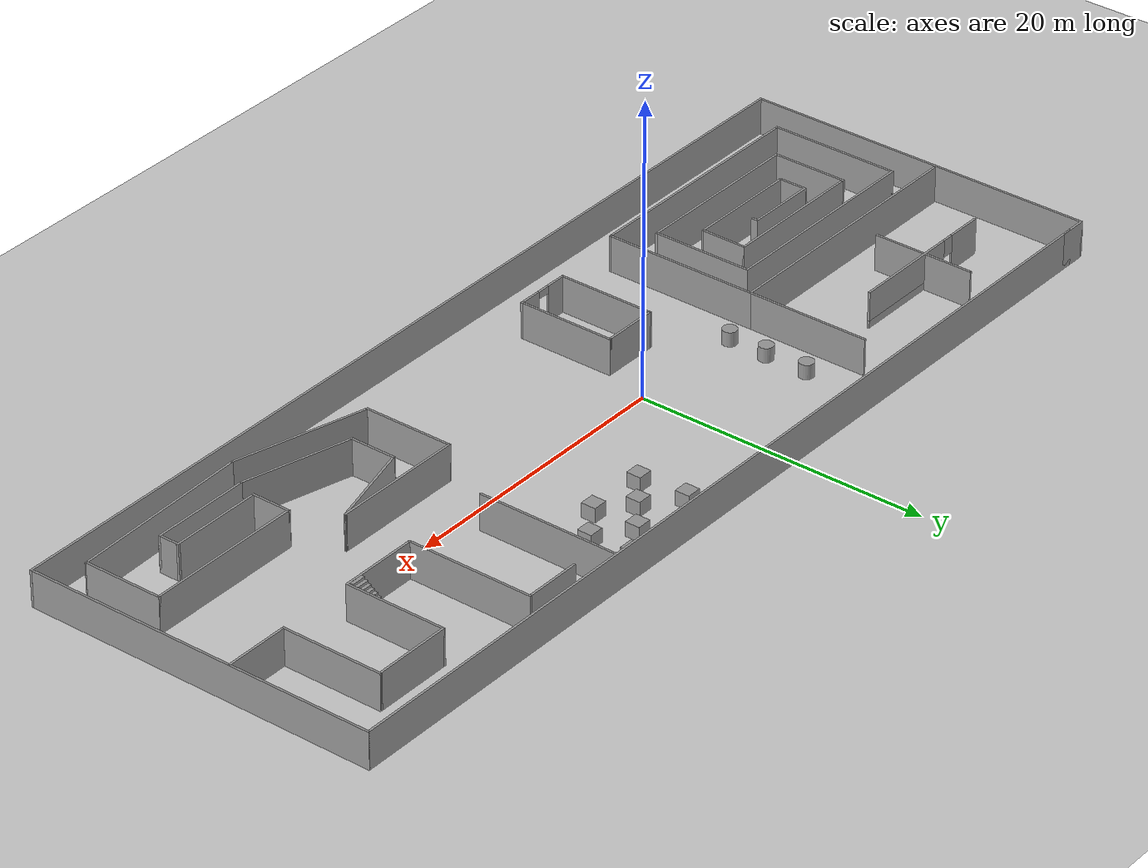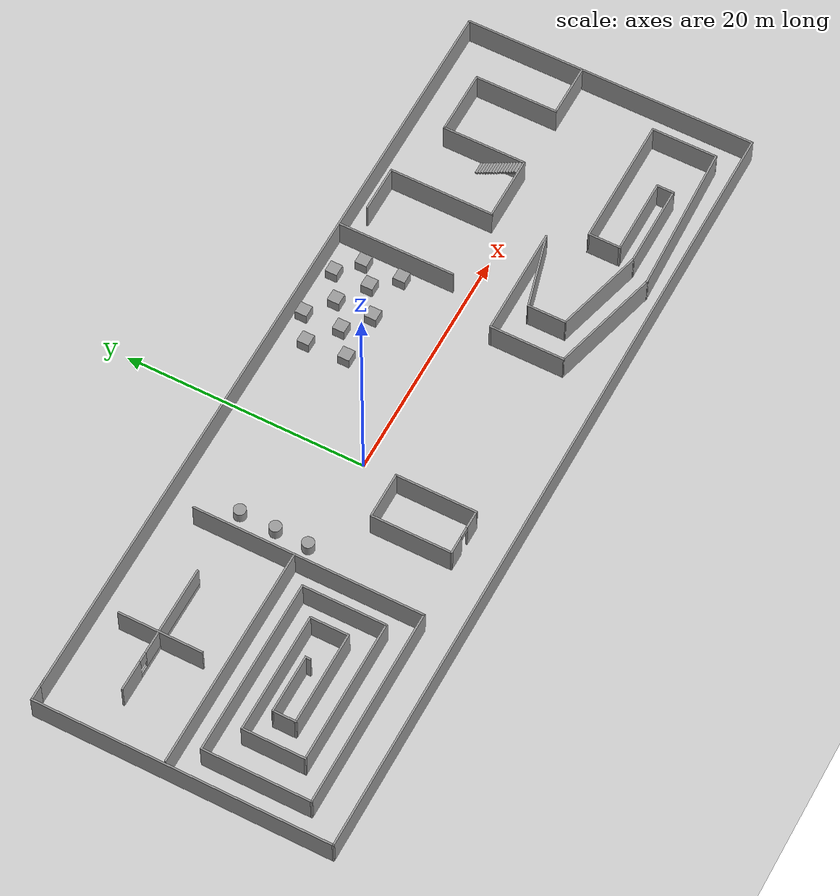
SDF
<sdf version="1.7">
 <world name="default">
  <light name="sun" type="directional">
   <pose>0 0 10 0 -0 0</pose>
   <diffuse>0.8 0.8 0.8 1</diffuse>
   <specular>0.2 0.2 0.2 1</specular>
   <attenuation>
    <range>1000</range>
    <constant>0.9</constant>
    <linear>0.01</linear>
    <quadratic>0.001</quadratic>
   </attenuation>
   <direction>-0.5 0.1 -0.9</direction>
   <spot><inner_angle>0</inner_angle><outer_angle>0</outer_angle><falloff>0</falloff></spot>
  </light>
  <model name="ground_plane">
   <static>1</static>
   <link name="link">
    <collision name="collision">
     <geometry><plane><normal>0 0 1</normal><size>100 100</size></plane></geometry>
     <surface>
      <contact><collide_bitmask>65535</collide_bitmask></contact>
      <friction><ode><mu>100</mu><mu2>50</mu2></ode></friction>
     </surface>
    </collision>
    <visual name="visual">
     <cast_shadows>0</cast_shadows>
     <geometry><plane><normal>0 0 1</normal><size>100 100</size></plane></geometry>
     <material>
      <script><uri>file://media/materials/scripts/gazebo.material</uri><name>Gazebo/Grey</name></script>
     </material>
    </visual>
   </link>
  </model>
  <gravity>0 0 -9.8</gravity>
  <magnetic_field>6e-06 2.3e-05 -4.2e-05</magnetic_field>
  <atmosphere type="adiabatic"/>
  <physics type="ode">
   <max_step_size>0.001</max_step_size>
   <real_time_factor>1</real_time_factor>
   <real_time_update_rate>1000</real_time_update_rate>
  </physics>
  <scene><ambient>0.4 0.4 0.4 1</ambient><background>0.7 0.7 0.7 1</background><shadows>1</shadows></scene>
  <spherical_coordinates>
   <surface_model>EARTH_WGS84</surface_model>
   <latitude_deg>0</latitude_deg>
   <longitude_deg>0</longitude_deg>
   <elevation>0</elevation>
   <heading_deg>0</heading_deg>
  </spherical_coordinates>
  <model name="Untitled">
   <pose>4.35845 -1.14468 0 0 -0 0</pose>
   <link name="Stairs_0">
    <visual name="Stairs_0_Visual_0">
     <pose>23.1197 5.82955 0.083333 0 -0 0</pose>
     <geometry><box><size>1 0.233333 0.166667</size></box></geometry>
     <material>
      <script><uri>file://media/materials/scripts/gazebo.material</uri><name>Gazebo/Grey</name></script>
      <ambient>1 1 1 1</ambient>
     </material>
     <meta><layer>0</layer></meta>
    </visual>
    <collision name="Stairs_0_Collision_0">
     <geometry><box><size>1 0.233333 0.166667</size></box></geometry>
     <pose>23.1197 5.82955 0.083333 0 -0 0</pose>
    </collision>
    <visual name="Stairs_0_Visual_1">
     <pose>23.1197 5.59622 0.25 0 -0 0</pose>
     <geometry><box><size>1 0.233333 0.166667</size></box></geometry>
     <material>
      <script><uri>file://media/materials/scripts/gazebo.material</uri><name>Gazebo/Grey</name></script>
      <ambient>1 1 1 1</ambient>
     </material>
     <meta><layer>0</layer></meta>
    </visual>
    <collision name="Stairs_0_Collision_1">
     <geometry><box><size>1 0.233333 0.166667</size></box></geometry>
     <pose>23.1197 5.59622 0.25 0 -0 0</pose>
    </collision>
    <visual name="Stairs_0_Visual_2">
     <pose>23.1197 5.36289 0.416667 0 -0 0</pose>
     <geometry><box><size>1 0.233333 0.166667</size></box></geometry>
     <material>
      <script><uri>file://media/materials/scripts/gazebo.material</uri><name>Gazebo/Grey</name></script>
      <ambient>1 1 1 1</ambient>
     </material>
     <meta><layer>0</layer></meta>
    </visual>
    <collision name="Stairs_0_Collision_2">
     <geometry><box><size>1 0.233333 0.166667</size></box></geometry>
     <pose>23.1197 5.36289 0.416667 0 -0 0</pose>
    </collision>
    <visual name="Stairs_0_Visual_3">
     <pose>23.1197 5.12955 0.583333 0 -0 0</pose>
     <geometry><box><size>1 0.233333 0.166667</size></box></geometry>
     <material>
      <script><uri>file://media/materials/scripts/gazebo.material</uri><name>Gazebo/Grey</name></script>
      <ambient>1 1 1 1</ambient>
     </material>
     <meta><layer>0</layer></meta>
    </visual>
    <collision name="Stairs_0_Collision_3">
     <geometry><box><size>1 0.233333 0.166667</size></box></geometry>
     <pose>23.1197 5.12955 0.583333 0 -0 0</pose>
    </collision>
    <visual name="Stairs_0_Visual_4">
     <pose>23.1197 4.89622 0.75 0 -0 0</pose>
     <geometry><box><size>1 0.233333 0.166667</size></box></geometry>
     <material>
      <script><uri>file://media/materials/scripts/gazebo.material</uri><name>Gazebo/Grey</name></script>
      <ambient>1 1 1 1</ambient>
     </material>
     <meta><layer>0</layer></meta>
    </visual>
    <collision name="Stairs_0_Collision_4">
     <geometry><box><size>1 0.233333 0.166667</size></box></geometry>
     <pose>23.1197 4.89622 0.75 0 -0 0</pose>
    </collision>
    <visual name="Stairs_0_Visual_5">
     <pose>23.1197 4.66289 0.916667 0 -0 0</pose>
     <geometry><box><size>1 0.233333 0.166667</size></box></geometry>
     <material>
      <script><uri>file://media/materials/scripts/gazebo.material</uri><name>Gazebo/Grey</name></script>
      <ambient>1 1 1 1</ambient>
     </material>
     <meta><layer>0</layer></meta>
    </visual>
    <collision name="Stairs_0_Collision_5">
     <geometry><box><size>1 0.233333 0.166667</size></box></geometry>
     <pose>23.1197 4.66289 0.916667 0 -0 0</pose>
    </collision>
    <visual name="Stairs_0_Visual_6">
     <pose>23.1197 4.42955 1.08333 0 -0 0</pose>
     <geometry><box><size>1 0.233333 0.166667</size></box></geometry>
     <material>
      <script><uri>file://media/materials/scripts/gazebo.material</uri><name>Gazebo/Grey</name></script>
      <ambient>1 1 1 1</ambient>
     </material>
     <meta><layer>0</layer></meta>
    </visual>
    <collision name="Stairs_0_Collision_6">
     <geometry><box><size>1 0.233333 0.166667</size></box></geometry>
     <pose>23.1197 4.42955 1.08333 0 -0 0</pose>
    </collision>
    <visual name="Stairs_0_Visual_7">
     <pose>23.1197 4.19622 1.25 0 -0 0</pose>
     <geometry><box><size>1 0.233333 0.166667</size></box></geometry>
     <material>
      <script><uri>file://media/materials/scripts/gazebo.material</uri><name>Gazebo/Grey</name></script>
      <ambient>1 1 1 1</ambient>
     </material>
     <meta><layer>0</layer></meta>
    </visual>
    <collision name="Stairs_0_Collision_7">
     <geometry><box><size>1 0.233333 0.166667</size></box></geometry>
     <pose>23.1197 4.19622 1.25 0 -0 0</pose>
    </collision>
    <visual name="Stairs_0_Visual_8">
     <pose>23.1197 3.96289 1.41667 0 -0 0</pose>
     <geometry><box><size>1 0.233333 0.166667</size></box></geometry>
     <material>
      <script><uri>file://media/materials/scripts/gazebo.material</uri><name>Gazebo/Grey</name></script>
      <ambient>1 1 1 1</ambient>
     </material>
     <meta><layer>0</layer></meta>
    </visual>
    <collision name="Stairs_0_Collision_8">
     <geometry><box><size>1 0.233333 0.166667</size></box></geometry>
     <pose>23.1197 3.96289 1.41667 0 -0 0</pose>
    </collision>
    <visual name="Stairs_0_Visual_9">
     <pose>23.1197 3.72955 1.58333 0 -0 0</pose>
     <geometry><box><size>1 0.233333 0.166667</size></box></geometry>
     <material>
      <script><uri>file://media/materials/scripts/gazebo.material</uri><name>Gazebo/Grey</name></script>
      <ambient>1 1 1 1</ambient>
     </material>
     <meta><layer>0</layer></meta>
    </visual>
    <collision name="Stairs_0_Collision_9">
     <geometry><box><size>1 0.233333 0.166667</size></box></geometry>
     <pose>23.1197 3.72955 1.58333 0 -0 0</pose>
    </collision>
    <visual name="Stairs_0_Visual_10">
     <pose>23.1197 3.49622 1.75 0 -0 0</pose>
     <geometry><box><size>1 0.233333 0.166667</size></box></geometry>
     <material>
      <script><uri>file://media/materials/scripts/gazebo.material</uri><name>Gazebo/Grey</name></script>
      <ambient>1 1 1 1</ambient>
     </material>
     <meta><layer>0</layer></meta>
    </visual>
    <collision name="Stairs_0_Collision_10">
     <geometry><box><size>1 0.233333 0.166667</size></box></geometry>
     <pose>23.1197 3.49622 1.75 0 -0 0</pose>
    </collision>
    <visual name="Stairs_0_Visual_11">
     <pose>23.1197 3.26289 1.91667 0 -0 0</pose>
     <geometry><box><size>1 0.233333 0.166667</size></box></geometry>
     <material>
      <script><uri>file://media/materials/scripts/gazebo.material</uri><name>Gazebo/Grey</name></script>
      <ambient>1 1 1 1</ambient>
     </material>
     <meta><layer>0</layer></meta>
    </visual>
    <collision name="Stairs_0_Collision_11">
     <geometry><box><size>1 0.233333 0.166667</size></box></geometry>
     <pose>23.1197 3.26289 1.91667 0 -0 0</pose>
    </collision>
    <visual name="Stairs_0_Visual_12">
     <pose>23.1197 3.02955 2.08333 0 -0 0</pose>
     <geometry><box><size>1 0.233333 0.166667</size></box></geometry>
     <material>
      <script><uri>file://media/materials/scripts/gazebo.material</uri><name>Gazebo/Grey</name></script>
      <ambient>1 1 1 1</ambient>
     </material>
     <meta><layer>0</layer></meta>
    </visual>
    <collision name="Stairs_0_Collision_12">
     <geometry><box><size>1 0.233333 0.166667</size></box></geometry>
     <pose>23.1197 3.02955 2.08333 0 -0 0</pose>
    </collision>
    <visual name="Stairs_0_Visual_13">
     <pose>23.1197 2.79622 2.25 0 -0 0</pose>
     <geometry><box><size>1 0.233333 0.166667</size></box></geometry>
     <material>
      <script><uri>file://media/materials/scripts/gazebo.material</uri><name>Gazebo/Grey</name></script>
      <ambient>1 1 1 1</ambient>
     </material>
     <meta><layer>0</layer></meta>
    </visual>
    <collision name="Stairs_0_Collision_13">
     <geometry><box><size>1 0.233333 0.166667</size></box></geometry>
     <pose>23.1197 2.79622 2.25 0 -0 0</pose>
    </collision>
    <visual name="Stairs_0_Visual_14">
     <pose>23.1197 2.56289 2.41667 0 -0 0</pose>
     <geometry><box><size>1 0.233333 0.166667</size></box></geometry>
     <material>
      <script><uri>file://media/materials/scripts/gazebo.material</uri><name>Gazebo/Grey</name></script>
      <ambient>1 1 1 1</ambient>
     </material>
     <meta><layer>0</layer></meta>
    </visual>
    <collision name="Stairs_0_Collision_14">
     <geometry><box><size>1 0.233333 0.166667</size></box></geometry>
     <pose>23.1197 2.56289 2.41667 0 -0 0</pose>
    </collision>
   </link>
   <link name="Wall_0">
    <collision name="Wall_0_Collision">
     <geometry><box><size>66 0.15 2.5</size></box></geometry>
     <pose>0 0 1.25 0 -0 0</pose>
    </collision>
    <visual name="Wall_0_Visual">
     <pose>0 0 1.25 0 -0 0</pose>
     <geometry><box><size>66 0.15 2.5</size></box></geometry>
     <material>
      <script><uri>file://media/materials/scripts/gazebo.material</uri><name>Gazebo/Grey</name></script>
      <ambient>1 1 1 1</ambient>
     </material>
     <meta><layer>0</layer></meta>
    </visual>
    <pose>0.625 12.175 0 0 -0 0</pose>
   </link>
   <link name="Wall_1">
    <collision name="Wall_1_Collision">
     <geometry><box><size>24.5 0.15 2.5</size></box></geometry>
     <pose>0 0 1.25 0 -0 0</pose>
    </collision>
    <visual name="Wall_1_Visual">
     <pose>0 0 1.25 0 -0 0</pose>
     <geometry><box><size>24.5 0.15 2.5</size></box></geometry>
     <material>
      <script><uri>file://media/materials/scripts/gazebo.material</uri><name>Gazebo/Grey</name></script>
      <ambient>1 1 1 1</ambient>
     </material>
     <meta><layer>0</layer></meta>
    </visual>
    <pose>33.55 0 0 0 -0 -1.5708</pose>
   </link>
   <link name="Wall_11">
    <collision name="Wall_11_Collision">
     <geometry><box><size>9 0.15 2.5</size></box></geometry>
     <pose>0 0 1.25 0 -0 0</pose>
    </collision>
    <visual name="Wall_11_Visual">
     <pose>0 0 1.25 0 -0 0</pose>
     <geometry><box><size>9 0.15 2.5</size></box></geometry>
     <material>
      <script><uri>file://media/materials/scripts/gazebo.material</uri><name>Gazebo/Grey</name></script>
      <ambient>1 1 1 1</ambient>
     </material>
     <meta><layer>0</layer></meta>
    </visual>
    <pose>-31.3049 -4.79614 0 0 -0 1.5708</pose>
   </link>
   <link name="Wall_12">
    <collision name="Wall_12_Collision">
     <geometry><box><size>15 0.15 2.5</size></box></geometry>
     <pose>0 0 1.25 0 -0 0</pose>
    </collision>
    <visual name="Wall_12_Visual">
     <pose>0 0 1.25 0 -0 0</pose>
     <geometry><box><size>15 0.15 2.5</size></box></geometry>
     <material>
      <script><uri>file://media/materials/scripts/gazebo.material</uri><name>Gazebo/Grey</name></script>
      <ambient>1 1 1 1</ambient>
     </material>
     <meta><layer>0</layer></meta>
    </visual>
    <pose>-23.8799 -0.371136 0 0 -0 0</pose>
   </link>
   <link name="Wall_13">
    <collision name="Wall_13_Collision">
     <geometry><box><size>7 0.15 2.5</size></box></geometry>
     <pose>0 0 1.25 0 -0 0</pose>
    </collision>
    <visual name="Wall_13_Visual">
     <pose>0 0 1.25 0 -0 0</pose>
     <geometry><box><size>7 0.15 2.5</size></box></geometry>
     <material>
      <script><uri>file://media/materials/scripts/gazebo.material</uri><name>Gazebo/Grey</name></script>
      <ambient>1 1 1 1</ambient>
     </material>
     <meta><layer>0</layer></meta>
    </visual>
    <pose>-16.4549 -3.79614 0 0 -0 -1.5708</pose>
   </link>
   <link name="Wall_14">
    <collision name="Wall_14_Collision">
     <geometry><box><size>12.25 0.15 2.5</size></box></geometry>
     <pose>0 0 1.25 0 -0 0</pose>
    </collision>
    <visual name="Wall_14_Visual">
     <pose>0 0 1.25 0 -0 0</pose>
     <geometry><box><size>12.25 0.15 2.5</size></box></geometry>
     <material>
      <script><uri>file://media/materials/scripts/gazebo.material</uri><name>Gazebo/Grey</name></script>
      <ambient>1 1 1 1</ambient>
     </material>
     <meta><layer>0</layer></meta>
    </visual>
    <pose>-22.5049 -7.22114 0 0 -0 3.14159</pose>
   </link>
   <link name="Wall_15">
    <collision name="Wall_15_Collision">
     <geometry><box><size>5.25 0.15 2.5</size></box></geometry>
     <pose>0 0 1.25 0 -0 0</pose>
    </collision>
    <visual name="Wall_15_Visual">
     <pose>0 0 1.25 0 -0 0</pose>
     <geometry><box><size>5.25 0.15 2.5</size></box></geometry>
     <material>
      <script><uri>file://media/materials/scripts/gazebo.material</uri><name>Gazebo/Grey</name></script>
      <ambient>1 1 1 1</ambient>
     </material>
     <meta><layer>0</layer></meta>
    </visual>
    <pose>-28.5549 -4.67114 0 0 -0 1.5708</pose>
   </link>
   <link name="Wall_16">
    <collision name="Wall_16_Collision">
     <geometry><box><size>10.25 0.15 2.5</size></box></geometry>
     <pose>0 0 1.25 0 -0 0</pose>
    </collision>
    <visual name="Wall_16_Visual">
     <pose>0 0 1.25 0 -0 0</pose>
     <geometry><box><size>10.25 0.15 2.5</size></box></geometry>
     <material>
      <script><uri>file://media/materials/scripts/gazebo.material</uri><name>Gazebo/Grey</name></script>
      <ambient>1 1 1 1</ambient>
     </material>
     <meta><layer>0</layer></meta>
    </visual>
    <pose>-23.5049 -2.12114 0 0 -0 0</pose>
   </link>
   <link name="Wall_17">
    <collision name="Wall_17_Collision">
     <geometry><box><size>3.25 0.15 2.5</size></box></geometry>
     <pose>0 0 1.25 0 -0 0</pose>
    </collision>
    <visual name="Wall_17_Visual">
     <pose>0 0 1.25 0 -0 0</pose>
     <geometry><box><size>3.25 0.15 2.5</size></box></geometry>
     <material>
      <script><uri>file://media/materials/scripts/gazebo.material</uri><name>Gazebo/Grey</name></script>
      <ambient>1 1 1 1</ambient>
     </material>
     <meta><layer>0</layer></meta>
    </visual>
    <pose>-18.4549 -3.67114 0 0 -0 -1.5708</pose>
   </link>
   <link name="Wall_18">
    <collision name="Wall_18_Collision">
     <geometry><box><size>8 0.15 2.5</size></box></geometry>
     <pose>0 0 1.25 0 -0 0</pose>
    </collision>
    <visual name="Wall_18_Visual">
     <pose>0 0 1.25 0 -0 0</pose>
     <geometry><box><size>8 0.15 2.5</size></box></geometry>
     <material>
      <script><uri>file://media/materials/scripts/gazebo.material</uri><name>Gazebo/Grey</name></script>
      <ambient>1 1 1 1</ambient>
     </material>
     <meta><layer>0</layer></meta>
    </visual>
    <pose>-22.3799 -5.22114 0 0 -0 3.14159</pose>
   </link>
   <link name="Wall_19">
    <collision name="Wall_19_Collision">
     <geometry><box><size>2 0.15 2.5</size></box></geometry>
     <pose>0 0 1.25 0 -0 0</pose>
    </collision>
    <visual name="Wall_19_Visual">
     <pose>0 0 1.25 0 -0 0</pose>
     <geometry><box><size>2 0.15 2.5</size></box></geometry>
     <material>
      <script><uri>file://media/materials/scripts/gazebo.material</uri><name>Gazebo/Grey</name></script>
      <ambient>1 1 1 1</ambient>
     </material>
     <meta><layer>0</layer></meta>
    </visual>
    <pose>-26.3049 -4.29614 0 0 -0 1.5708</pose>
   </link>
   <link name="Wall_2">
    <collision name="Wall_2_Collision">
     <geometry><box><size>67.25 0.15 2.5</size></box></geometry>
     <pose>0 0 1.25 0 -0 0</pose>
    </collision>
    <visual name="Wall_2_Visual">
     <pose>0 0 1.25 0 -0 0</pose>
     <geometry><box><size>67.25 0.15 2.5</size></box></geometry>
     <material>
      <script><uri>file://media/materials/scripts/gazebo.material</uri><name>Gazebo/Grey</name></script>
      <ambient>1 1 1 1</ambient>
     </material>
     <meta><layer>0</layer></meta>
    </visual>
    <pose>-0 -12.175 0 0 -0 3.14159</pose>
   </link>
   <link name="Wall_20">
    <collision name="Wall_20_Collision">
     <geometry><box><size>5 0.15 2.5</size></box></geometry>
     <pose>0 0 1.25 0 -0 0</pose>
    </collision>
    <visual name="Wall_20_Visual">
     <pose>0 0 1.25 0 -0 0</pose>
     <geometry><box><size>5 0.15 2.5</size></box></geometry>
     <material>
      <script><uri>file://media/materials/scripts/gazebo.material</uri><name>Gazebo/Grey</name></script>
      <ambient>1 1 1 1</ambient>
     </material>
     <meta><layer>0</layer></meta>
    </visual>
    <pose>-23.8799 -3.37114 0 0 -0 0</pose>
   </link>
   <link name="Wall_21">
    <collision name="Wall_21_Collision">
     <geometry><box><size>0.5 0.15 2.5</size></box></geometry>
     <pose>0 0 1.25 0 -0 0</pose>
    </collision>
    <visual name="Wall_21_Visual">
     <pose>0 0 1.25 0 -0 0</pose>
     <geometry><box><size>0.5 0.15 2.5</size></box></geometry>
     <material>
      <script><uri>file://media/materials/scripts/gazebo.material</uri><name>Gazebo/Grey</name></script>
      <ambient>1 1 1 1</ambient>
     </material>
     <meta><layer>0</layer></meta>
    </visual>
    <pose>-21.4549 -3.54614 0 0 -0 -1.5708</pose>
   </link>
   <link name="Wall_23">
    <collision name="Wall_23_Collision">
     <geometry><box><size>8.5 0.15 2.5</size></box></geometry>
     <pose>0 0 1.25 0 -0 0</pose>
    </collision>
    <visual name="Wall_23_Visual">
     <pose>0 0 1.25 0 -0 0</pose>
     <geometry><box><size>8.5 0.15 2.5</size></box></geometry>
     <material>
      <script><uri>file://media/materials/scripts/gazebo.material</uri><name>Gazebo/Grey</name></script>
      <ambient>1 1 1 1</ambient>
     </material>
     <meta><layer>0</layer></meta>
    </visual>
    <pose>-14.4549 5.55386 0 0 -0 1.5708</pose>
   </link>
   <link name="Wall_25">
    <collision name="Wall_25_Collision">
     <geometry><box><size>7 0.15 2.5</size></box></geometry>
     <pose>0 0 1.25 0 -0 0</pose>
    </collision>
    <visual name="Wall_25_Visual">
     <pose>0 0 1.25 0 -0 0</pose>
     <geometry><box><size>7 0.15 2.5</size></box></geometry>
     <material>
      <script><uri>file://media/materials/scripts/gazebo.material</uri><name>Gazebo/Grey</name></script>
      <ambient>1 1 1 1</ambient>
     </material>
     <meta><layer>0</layer></meta>
    </visual>
    <pose>-24.5658 6.78929 0 0 -0 -1.5708</pose>
   </link>
   <link name="Wall_27">
    <pose>-24.3582 6.90238 0 0 -0 0</pose>
    <visual name="Wall_27_Visual_0">
     <pose>-4.23152 0 1.25 0 -0 0</pose>
     <geometry><box><size>2.53697 0.15 2.5</size></box></geometry>
     <material>
      <script><uri>file://media/materials/scripts/gazebo.material</uri><name>Gazebo/Grey</name></script>
      <ambient>1 1 1 1</ambient>
     </material>
     <meta><layer>0</layer></meta>
    </visual>
    <collision name="Wall_27_Collision_0">
     <geometry><box><size>2.53697 0.15 2.5</size></box></geometry>
     <pose>-4.23152 0 1.25 0 -0 0</pose>
    </collision>
    <visual name="Wall_27_Visual_1">
     <pose>1.26848 0 0.25 0 -0 0</pose>
     <geometry><box><size>8.46303 0.15 0.5</size></box></geometry>
     <material>
      <script><uri>file://media/materials/scripts/gazebo.material</uri><name>Gazebo/Grey</name></script>
      <ambient>1 1 1 1</ambient>
     </material>
     <meta><layer>0</layer></meta>
    </visual>
    <collision name="Wall_27_Collision_1">
     <geometry><box><size>8.46303 0.15 0.5</size></box></geometry>
     <pose>1.26848 0 0.25 0 -0 0</pose>
    </collision>
    <visual name="Wall_27_Visual_2">
     <pose>1.66848 0 1.5 0 -0 0</pose>
     <geometry><box><size>7.66303 0.15 2</size></box></geometry>
     <material>
      <script><uri>file://media/materials/scripts/gazebo.material</uri><name>Gazebo/Grey</name></script>
      <ambient>1 1 1 1</ambient>
     </material>
     <meta><layer>0</layer></meta>
    </visual>
    <collision name="Wall_27_Collision_2">
     <geometry><box><size>7.66303 0.15 2</size></box></geometry>
     <pose>1.66848 0 1.5 0 -0 0</pose>
    </collision>
    <visual name="Wall_27_Visual_3">
     <pose>-2.56303 0 1.9 0 -0 0</pose>
     <geometry><box><size>0.8 0.15 1.2</size></box></geometry>
     <material>
      <script><uri>file://media/materials/scripts/gazebo.material</uri><name>Gazebo/Grey</name></script>
      <ambient>1 1 1 1</ambient>
     </material>
     <meta><layer>0</layer></meta>
    </visual>
    <collision name="Wall_27_Collision_3">
     <geometry><box><size>0.8 0.15 1.2</size></box></geometry>
     <pose>-2.56303 0 1.9 0 -0 0</pose>
    </collision>
   </link>
   <link name="Wall_29">
    <collision name="Wall_29_Collision">
     <geometry><box><size>9.75 0.15 2.5</size></box></geometry>
     <pose>0 0 1.25 0 -0 0</pose>
    </collision>
    <visual name="Wall_29_Visual">
     <pose>0 0 1.25 0 -0 0</pose>
     <geometry><box><size>9.75 0.15 2.5</size></box></geometry>
     <material>
      <script><uri>file://media/materials/scripts/gazebo.material</uri><name>Gazebo/Grey</name></script>
      <ambient>1 1 1 1</ambient>
     </material>
     <meta><layer>0</layer></meta>
    </visual>
    <pose>12.2564 7.26229 0 0 -0 -1.5708</pose>
   </link>
   <link name="Wall_3">
    <collision name="Wall_3_Collision">
     <geometry><box><size>24.5 0.15 2.5</size></box></geometry>
     <pose>0 0 1.25 0 -0 0</pose>
    </collision>
    <visual name="Wall_3_Visual">
     <pose>0 0 1.25 0 -0 0</pose>
     <geometry><box><size>24.5 0.15 2.5</size></box></geometry>
     <material>
      <script><uri>file://media/materials/scripts/gazebo.material</uri><name>Gazebo/Grey</name></script>
      <ambient>1 1 1 1</ambient>
     </material>
     <meta><layer>0</layer></meta>
    </visual>
    <pose>-33.55 0 0 0 -0 1.5708</pose>
   </link>
   <link name="Wall_31">
    <collision name="Wall_31_Collision">
     <geometry><box><size>4 0.15 2.5</size></box></geometry>
     <pose>0 0 1.25 0 -0 0</pose>
    </collision>
    <visual name="Wall_31_Visual">
     <pose>0 0 1.25 0 -0 0</pose>
     <geometry><box><size>4 0.15 2.5</size></box></geometry>
     <material>
      <script><uri>file://media/materials/scripts/gazebo.material</uri><name>Gazebo/Grey</name></script>
      <ambient>1 1 1 1</ambient>
     </material>
     <meta><layer>0</layer></meta>
    </visual>
    <pose>16.477 10.9666 0 0 -0 0</pose>
   </link>
   <link name="Wall_32">
    <collision name="Wall_32_Collision">
     <geometry><box><size>8.75 0.15 2.5</size></box></geometry>
     <pose>0 0 1.25 0 -0 0</pose>
    </collision>
    <visual name="Wall_32_Visual">
     <pose>0 0 1.25 0 -0 0</pose>
     <geometry><box><size>8.75 0.15 2.5</size></box></geometry>
     <material>
      <script><uri>file://media/materials/scripts/gazebo.material</uri><name>Gazebo/Grey</name></script>
      <ambient>1 1 1 1</ambient>
     </material>
     <meta><layer>0</layer></meta>
    </visual>
    <pose>18.402 6.66664 0 0 -0 -1.5708</pose>
   </link>
   <link name="Wall_33">
    <collision name="Wall_33_Collision">
     <geometry><box><size>5.5 0.15 2.5</size></box></geometry>
     <pose>0 0 1.25 0 -0 0</pose>
    </collision>
    <visual name="Wall_33_Visual">
     <pose>0 0 1.25 0 -0 0</pose>
     <geometry><box><size>5.5 0.15 2.5</size></box></geometry>
     <material>
      <script><uri>file://media/materials/scripts/gazebo.material</uri><name>Gazebo/Grey</name></script>
      <ambient>1 1 1 1</ambient>
     </material>
     <meta><layer>0</layer></meta>
    </visual>
    <pose>21.077 2.36664 0 0 -0 0</pose>
   </link>
   <link name="Wall_34">
    <collision name="Wall_34_Collision">
     <geometry><box><size>7 0.15 2.5</size></box></geometry>
     <pose>0 0 1.25 0 -0 0</pose>
    </collision>
    <visual name="Wall_34_Visual">
     <pose>0 0 1.25 0 -0 0</pose>
     <geometry><box><size>7 0.15 2.5</size></box></geometry>
     <material>
      <script><uri>file://media/materials/scripts/gazebo.material</uri><name>Gazebo/Grey</name></script>
      <ambient>1 1 1 1</ambient>
     </material>
     <meta><layer>0</layer></meta>
    </visual>
    <pose>23.752 5.79164 0 0 -0 1.5708</pose>
   </link>
   <link name="Wall_35">
    <collision name="Wall_35_Collision">
     <geometry><box><size>5.5 0.15 2.5</size></box></geometry>
     <pose>0 0 1.25 0 -0 0</pose>
    </collision>
    <visual name="Wall_35_Visual">
     <pose>0 0 1.25 0 -0 0</pose>
     <geometry><box><size>5.5 0.15 2.5</size></box></geometry>
     <material>
      <script><uri>file://media/materials/scripts/gazebo.material</uri><name>Gazebo/Grey</name></script>
      <ambient>1 1 1 1</ambient>
     </material>
     <meta><layer>0</layer></meta>
    </visual>
    <pose>26.427 9.21664 0 0 -0 0</pose>
   </link>
   <link name="Wall_36">
    <collision name="Wall_36_Collision">
     <geometry><box><size>7 0.15 2.5</size></box></geometry>
     <pose>0 0 1.25 0 -0 0</pose>
    </collision>
    <visual name="Wall_36_Visual">
     <pose>0 0 1.25 0 -0 0</pose>
     <geometry><box><size>7 0.15 2.5</size></box></geometry>
     <material>
      <script><uri>file://media/materials/scripts/gazebo.material</uri><name>Gazebo/Grey</name></script>
      <ambient>1 1 1 1</ambient>
     </material>
     <meta><layer>0</layer></meta>
    </visual>
    <pose>29.102 5.79164 0 0 -0 -1.5708</pose>
   </link>
   <link name="Wall_37">
    <collision name="Wall_37_Collision">
     <geometry><box><size>4.5 0.15 2.5</size></box></geometry>
     <pose>0 0 1.25 0 -0 0</pose>
    </collision>
    <visual name="Wall_37_Visual">
     <pose>0 0 1.25 0 -0 0</pose>
     <geometry><box><size>4.5 0.15 2.5</size></box></geometry>
     <material>
      <script><uri>file://media/materials/scripts/gazebo.material</uri><name>Gazebo/Grey</name></script>
      <ambient>1 1 1 1</ambient>
     </material>
     <meta><layer>0</layer></meta>
    </visual>
    <pose>31.277 2.36664 0 0 -0 0</pose>
   </link>
   <link name="Wall_39">
    <collision name="Wall_39_Collision">
     <geometry><box><size>9.5 0.15 2.5</size></box></geometry>
     <pose>0 0 1.25 0 -0 0</pose>
    </collision>
    <visual name="Wall_39_Visual">
     <pose>0 0 1.25 0 -0 0</pose>
     <geometry><box><size>9.5 0.15 2.5</size></box></geometry>
     <material>
      <script><uri>file://media/materials/scripts/gazebo.material</uri><name>Gazebo/Grey</name></script>
      <ambient>1 1 1 1</ambient>
     </material>
     <meta><layer>0</layer></meta>
    </visual>
    <pose>13.9751 -9.49174 0 0 -0 2.87979</pose>
   </link>
   <link name="Wall_4">
    <collision name="Wall_4_Collision">
     <geometry><box><size>2 0.15 2.5</size></box></geometry>
     <pose>0 0 1.25 0 -0 0</pose>
    </collision>
    <visual name="Wall_4_Visual">
     <pose>0 0 1.25 0 -0 0</pose>
     <geometry><box><size>2 0.15 2.5</size></box></geometry>
     <material>
      <script><uri>file://media/materials/scripts/gazebo.material</uri><name>Gazebo/Grey</name></script>
      <ambient>1 1 1 1</ambient>
     </material>
     <meta><layer>0</layer></meta>
    </visual>
    <pose>-32.625 12.175 0 0 -0 0</pose>
   </link>
   <link name="Wall_40">
    <collision name="Wall_40_Collision">
     <geometry><box><size>6.25 0.15 2.5</size></box></geometry>
     <pose>0 0 1.25 0 -0 0</pose>
    </collision>
    <visual name="Wall_40_Visual">
     <pose>0 0 1.25 0 -0 0</pose>
     <geometry><box><size>6.25 0.15 2.5</size></box></geometry>
     <material>
      <script><uri>file://media/materials/scripts/gazebo.material</uri><name>Gazebo/Grey</name></script>
      <ambient>1 1 1 1</ambient>
     </material>
     <meta><layer>0</layer></meta>
    </visual>
    <pose>9.45943 -5.23176 0 0 -0 1.5708</pose>
   </link>
   <link name="Wall_41">
    <collision name="Wall_41_Collision">
     <geometry><box><size>9.25 0.15 2.5</size></box></geometry>
     <pose>0 0 1.25 0 -0 0</pose>
    </collision>
    <visual name="Wall_41_Visual">
     <pose>0 0 1.25 0 -0 0</pose>
     <geometry><box><size>9.25 0.15 2.5</size></box></geometry>
     <material>
      <script><uri>file://media/materials/scripts/gazebo.material</uri><name>Gazebo/Grey</name></script>
      <ambient>1 1 1 1</ambient>
     </material>
     <meta><layer>0</layer></meta>
    </visual>
    <pose>14.0094 -2.18176 0 0 -0 0</pose>
   </link>
   <link name="Wall_42">
    <collision name="Wall_42_Collision">
     <geometry><box><size>6.5 0.15 2.5</size></box></geometry>
     <pose>0 0 1.25 0 -0 0</pose>
    </collision>
    <visual name="Wall_42_Visual">
     <pose>0 0 1.25 0 -0 0</pose>
     <geometry><box><size>6.5 0.15 2.5</size></box></geometry>
     <material>
      <script><uri>file://media/materials/scripts/gazebo.material</uri><name>Gazebo/Grey</name></script>
      <ambient>1 1 1 1</ambient>
     </material>
     <meta><layer>0</layer></meta>
    </visual>
    <pose>15.4926 -3.00351 0 0 -0 -2.87979</pose>
   </link>
   <link name="Wall_43">
    <collision name="Wall_43_Collision">
     <geometry><box><size>3.25 0.15 2.5</size></box></geometry>
     <pose>0 0 1.25 0 -0 0</pose>
    </collision>
    <visual name="Wall_43_Visual">
     <pose>0 0 1.25 0 -0 0</pose>
     <geometry><box><size>3.25 0.15 2.5</size></box></geometry>
     <material>
      <script><uri>file://media/materials/scripts/gazebo.material</uri><name>Gazebo/Grey</name></script>
      <ambient>1 1 1 1</ambient>
     </material>
     <meta><layer>0</layer></meta>
    </visual>
    <pose>12.4258 -5.37526 0 0 -0 -1.5708</pose>
   </link>
   <link name="Wall_44">
    <collision name="Wall_44_Collision">
     <geometry><box><size>7.75 0.15 2.5</size></box></geometry>
     <pose>0 0 1.25 0 -0 0</pose>
    </collision>
    <visual name="Wall_44_Visual">
     <pose>0 0 1.25 0 -0 0</pose>
     <geometry><box><size>7.75 0.15 2.5</size></box></geometry>
     <material>
      <script><uri>file://media/materials/scripts/gazebo.material</uri><name>Gazebo/Grey</name></script>
      <ambient>1 1 1 1</ambient>
     </material>
     <meta><layer>0</layer></meta>
    </visual>
    <pose>16.0963 -7.90877 0 0 -0 -0.261799</pose>
   </link>
   <link name="Wall_45">
    <collision name="Wall_45_Collision">
     <geometry><box><size>7 0.15 2.5</size></box></geometry>
     <pose>0 0 1.25 0 -0 0</pose>
    </collision>
    <visual name="Wall_45_Visual">
     <pose>0 0 1.25 0 -0 0</pose>
     <geometry><box><size>7 0.15 2.5</size></box></geometry>
     <material>
      <script><uri>file://media/materials/scripts/gazebo.material</uri><name>Gazebo/Grey</name></script>
      <ambient>1 1 1 1</ambient>
     </material>
     <meta><layer>0</layer></meta>
    </visual>
    <pose>23.1918 -8.89228 0 0 -0 0</pose>
   </link>
   <link name="Wall_46">
    <collision name="Wall_46_Collision">
     <geometry><box><size>1.5 0.15 2.5</size></box></geometry>
     <pose>0 0 1.25 0 -0 0</pose>
    </collision>
    <visual name="Wall_46_Visual">
     <pose>0 0 1.25 0 -0 0</pose>
     <geometry><box><size>1.5 0.15 2.5</size></box></geometry>
     <material>
      <script><uri>file://media/materials/scripts/gazebo.material</uri><name>Gazebo/Grey</name></script>
      <ambient>1 1 1 1</ambient>
     </material>
     <meta><layer>0</layer></meta>
    </visual>
    <pose>26.6168 -8.21728 0 0 -0 1.5708</pose>
   </link>
   <link name="Wall_47">
    <collision name="Wall_47_Collision">
     <geometry><box><size>6.5 0.15 2.5</size></box></geometry>
     <pose>0 0 1.25 0 -0 0</pose>
    </collision>
    <visual name="Wall_47_Visual">
     <pose>0 0 1.25 0 -0 0</pose>
     <geometry><box><size>6.5 0.15 2.5</size></box></geometry>
     <material>
      <script><uri>file://media/materials/scripts/gazebo.material</uri><name>Gazebo/Grey</name></script>
      <ambient>1 1 1 1</ambient>
     </material>
     <meta><layer>0</layer></meta>
    </visual>
    <pose>23.4418 -7.54228 0 0 -0 3.14159</pose>
   </link>
   <link name="Wall_48">
    <collision name="Wall_48_Collision">
     <geometry><box><size>2.75 0.15 2.5</size></box></geometry>
     <pose>0 0 1.25 0 -0 0</pose>
    </collision>
    <visual name="Wall_48_Visual">
     <pose>0 0 1.25 0 -0 0</pose>
     <geometry><box><size>2.75 0.15 2.5</size></box></geometry>
     <material>
      <script><uri>file://media/materials/scripts/gazebo.material</uri><name>Gazebo/Grey</name></script>
      <ambient>1 1 1 1</ambient>
     </material>
     <meta><layer>0</layer></meta>
    </visual>
    <pose>20.2668 -6.24228 0 0 -0 1.5708</pose>
   </link>
   <link name="Wall_49">
    <collision name="Wall_49_Collision">
     <geometry><box><size>11 0.15 2.5</size></box></geometry>
     <pose>0 0 1.25 0 -0 0</pose>
    </collision>
    <visual name="Wall_49_Visual">
     <pose>0 0 1.25 0 -0 0</pose>
     <geometry><box><size>11 0.15 2.5</size></box></geometry>
     <material>
      <script><uri>file://media/materials/scripts/gazebo.material</uri><name>Gazebo/Grey</name></script>
      <ambient>1 1 1 1</ambient>
     </material>
     <meta><layer>0</layer></meta>
    </visual>
    <pose>25.6918 -4.94228 0 0 -0 0</pose>
   </link>
   <link name="Wall_50">
    <collision name="Wall_50_Collision">
     <geometry><box><size>5.5 0.15 2.5</size></box></geometry>
     <pose>0 0 1.25 0 -0 0</pose>
    </collision>
    <visual name="Wall_50_Visual">
     <pose>0 0 1.25 0 -0 0</pose>
     <geometry><box><size>5.5 0.15 2.5</size></box></geometry>
     <material>
      <script><uri>file://media/materials/scripts/gazebo.material</uri><name>Gazebo/Grey</name></script>
      <ambient>1 1 1 1</ambient>
     </material>
     <meta><layer>0</layer></meta>
    </visual>
    <pose>31.1168 -7.61728 0 0 -0 -1.5708</pose>
   </link>
   <link name="Wall_51">
    <collision name="Wall_51_Collision">
     <geometry><box><size>12.7826 0.15 2.5</size></box></geometry>
     <pose>0 0 1.25 0 -0 0</pose>
    </collision>
    <visual name="Wall_51_Visual">
     <pose>0 0 1.25 0 -0 0</pose>
     <geometry><box><size>12.7826 0.15 2.5</size></box></geometry>
     <material>
      <script><uri>file://media/materials/scripts/gazebo.material</uri><name>Gazebo/Grey</name></script>
      <ambient>1 1 1 1</ambient>
     </material>
     <meta><layer>0</layer></meta>
    </visual>
    <pose>24.8038 -10.497 0 0 -0 -3.10918</pose>
   </link>
   <link name="Wall_53">
    <collision name="Wall_53_Collision">
     <geometry><box><size>6.75 0.15 2.5</size></box></geometry>
     <pose>0 0 1.25 0 -0 0</pose>
    </collision>
    <visual name="Wall_53_Visual">
     <pose>0 0 1.25 0 -0 0</pose>
     <geometry><box><size>6.75 0.15 2.5</size></box></geometry>
     <material>
      <script><uri>file://media/materials/scripts/gazebo.material</uri><name>Gazebo/Grey</name></script>
      <ambient>1 1 1 1</ambient>
     </material>
     <meta><layer>0</layer></meta>
    </visual>
    <pose>-9.00038 -5.29504 0 0 -0 1.5708</pose>
   </link>
   <link name="Wall_54">
    <collision name="Wall_54_Collision">
     <geometry><box><size>4 0.15 2.5</size></box></geometry>
     <pose>0 0 1.25 0 -0 0</pose>
    </collision>
    <visual name="Wall_54_Visual">
     <pose>0 0 1.25 0 -0 0</pose>
     <geometry><box><size>4 0.15 2.5</size></box></geometry>
     <material>
      <script><uri>file://media/materials/scripts/gazebo.material</uri><name>Gazebo/Grey</name></script>
      <ambient>1 1 1 1</ambient>
     </material>
     <meta><layer>0</layer></meta>
    </visual>
    <pose>-7.07538 -1.99504 0 0 -0 0</pose>
   </link>
   <link name="Wall_55">
    <collision name="Wall_55_Collision">
     <geometry><box><size>6.75 0.15 2.5</size></box></geometry>
     <pose>0 0 1.25 0 -0 0</pose>
    </collision>
    <visual name="Wall_55_Visual">
     <pose>0 0 1.25 0 -0 0</pose>
     <geometry><box><size>6.75 0.15 2.5</size></box></geometry>
     <material>
      <script><uri>file://media/materials/scripts/gazebo.material</uri><name>Gazebo/Grey</name></script>
      <ambient>1 1 1 1</ambient>
     </material>
     <meta><layer>0</layer></meta>
    </visual>
    <pose>-5.15038 -5.29504 0 0 -0 -1.5708</pose>
   </link>
   <link name="Wall_56">
    <pose>-7.07538 -8.59504 0 0 -0 3.14159</pose>
    <visual name="Wall_56_Visual_0">
     <pose>-1.21101 0 1.25 0 -0 0</pose>
     <geometry><box><size>1.57797 0.15 2.5</size></box></geometry>
     <material>
      <script><uri>file://media/materials/scripts/gazebo.material</uri><name>Gazebo/Grey</name></script>
      <ambient>1 1 1 1</ambient>
     </material>
     <meta><layer>0</layer></meta>
    </visual>
    <collision name="Wall_56_Collision_0">
     <geometry><box><size>1.57797 0.15 2.5</size></box></geometry>
     <pose>-1.21101 0 1.25 0 -0 0</pose>
    </collision>
    <visual name="Wall_56_Visual_1">
     <pose>1.23899 0 1.25 0 -0 0</pose>
     <geometry><box><size>1.52203 0.15 2.5</size></box></geometry>
     <material>
      <script><uri>file://media/materials/scripts/gazebo.material</uri><name>Gazebo/Grey</name></script>
      <ambient>1 1 1 1</ambient>
     </material>
     <meta><layer>0</layer></meta>
    </visual>
    <collision name="Wall_56_Collision_1">
     <geometry><box><size>1.52203 0.15 2.5</size></box></geometry>
     <pose>1.23899 0 1.25 0 -0 0</pose>
    </collision>
    <visual name="Wall_56_Visual_2">
     <pose>0.027972 0 2.25 0 -0 0</pose>
     <geometry><box><size>0.9 0.15 0.5</size></box></geometry>
     <material>
      <script><uri>file://media/materials/scripts/gazebo.material</uri><name>Gazebo/Grey</name></script>
      <ambient>1 1 1 1</ambient>
     </material>
     <meta><layer>0</layer></meta>
    </visual>
    <collision name="Wall_56_Collision_2">
     <geometry><box><size>0.9 0.15 0.5</size></box></geometry>
     <pose>0.027972 0 2.25 0 -0 0</pose>
    </collision>
   </link>
   <link name="Wall_6">
    <collision name="Wall_6_Collision">
     <geometry><box><size>19 0.15 2.5</size></box></geometry>
     <pose>0 0 1.25 0 -0 0</pose>
    </collision>
    <visual name="Wall_6_Visual">
     <pose>0 0 1.25 0 -0 0</pose>
     <geometry><box><size>19 0.15 2.5</size></box></geometry>
     <material>
      <script><uri>file://media/materials/scripts/gazebo.material</uri><name>Gazebo/Grey</name></script>
      <ambient>1 1 1 1</ambient>
     </material>
     <meta><layer>0</layer></meta>
    </visual>
    <pose>-23.8799 1.37886 0 0 -0 0</pose>
   </link>
   <link name="Wall_7">
    <collision name="Wall_7_Collision">
     <geometry><box><size>10.75 0.15 2.5</size></box></geometry>
     <pose>0 0 1.25 0 -0 0</pose>
    </collision>
    <visual name="Wall_7_Visual">
     <pose>0 0 1.25 0 -0 0</pose>
     <geometry><box><size>10.75 0.15 2.5</size></box></geometry>
     <material>
      <script><uri>file://media/materials/scripts/gazebo.material</uri><name>Gazebo/Grey</name></script>
      <ambient>1 1 1 1</ambient>
     </material>
     <meta><layer>0</layer></meta>
    </visual>
    <pose>-14.4549 -3.92114 0 0 -0 -1.5708</pose>
   </link>
   <link name="Wall_8">
    <collision name="Wall_8_Collision">
     <geometry><box><size>17 0.15 2.5</size></box></geometry>
     <pose>0 0 1.25 0 -0 0</pose>
    </collision>
    <visual name="Wall_8_Visual">
     <pose>0 0 1.25 0 -0 0</pose>
     <geometry><box><size>17 0.15 2.5</size></box></geometry>
     <material>
      <script><uri>file://media/materials/scripts/gazebo.material</uri><name>Gazebo/Grey</name></script>
      <ambient>1 1 1 1</ambient>
     </material>
     <meta><layer>0</layer></meta>
    </visual>
    <pose>-22.8799 -9.22114 0 0 -0 3.14159</pose>
   </link>
   <static>1</static>
  </model>
  <model name="unit_box">
   <pose>7.26234 8.8139 0.499995 0 1e-05 0</pose>
   <link name="link">
    <inertial>
     <mass>1</mass>
     <inertia>
      <ixx>0.166667</ixx>
      <ixy>0</ixy>
      <ixz>0</ixz>
      <iyy>0.166667</iyy>
      <iyz>0</iyz>
      <izz>0.166667</izz>
     </inertia>
    </inertial>
    <collision name="collision"><geometry><box><size>1 1 1</size></box></geometry></collision>
    <visual name="visual">
     <geometry><box><size>1 1 1</size></box></geometry>
     <material>
      <script><name>Gazebo/Grey</name><uri>file://media/materials/scripts/gazebo.material</uri></script>
     </material>
    </visual>
   </link>
  </model>
  <model name="unit_box_0">
   <pose>9.49958 7.01387 0.499995 -1e-05 -0 -0</pose>
   <link name="link">
    <inertial>
     <mass>1</mass>
     <inertia>
      <ixx>0.166667</ixx>
      <ixy>0</ixy>
      <ixz>0</ixz>
      <iyy>0.166667</iyy>
      <iyz>0</iyz>
      <izz>0.166667</izz>
     </inertia>
    </inertial>
    <collision name="collision"><geometry><box><size>1 1 1</size></box></geometry></collision>
    <visual name="visual">
     <geometry><box><size>1 1 1</size></box></geometry>
     <material>
      <script><name>Gazebo/Grey</name><uri>file://media/materials/scripts/gazebo.material</uri></script>
     </material>
    </visual>
   </link>
  </model>
  <model name="unit_box_1">
   <pose>11.5295 8.55248 0.499995 0 1e-05 0</pose>
   <link name="link">
    <inertial>
     <mass>1</mass>
     <inertia>
      <ixx>0.166667</ixx>
      <ixy>0</ixy>
      <ixz>0</ixz>
      <iyy>0.166667</iyy>
      <iyz>0</iyz>
      <izz>0.166667</izz>
     </inertia>
    </inertial>
    <collision name="collision"><geometry><box><size>1 1 1</size></box></geometry></collision>
    <visual name="visual">
     <geometry><box><size>1 1 1</size></box></geometry>
     <material>
      <script><name>Gazebo/Grey</name><uri>file://media/materials/scripts/gazebo.material</uri></script>
     </material>
    </visual>
   </link>
  </model>
  <model name="unit_box_2">
   <pose>7.49187 5.49101 0.499995 -1e-05 -0 -0</pose>
   <link name="link">
    <inertial>
     <mass>1</mass>
     <inertia>
      <ixx>0.166667</ixx>
      <ixy>0</ixy>
      <ixz>0</ixz>
      <iyy>0.166667</iyy>
      <iyz>0</iyz>
      <izz>0.166667</izz>
     </inertia>
    </inertial>
    <collision name="collision"><geometry><box><size>1 1 1</size></box></geometry></collision>
    <visual name="visual">
     <geometry><box><size>1 1 1</size></box></geometry>
     <material>
      <script><name>Gazebo/Grey</name><uri>file://media/materials/scripts/gazebo.material</uri></script>
     </material>
    </visual>
   </link>
  </model>
  <model name="unit_box_3">
   <pose>11.5675 5.42146 0.499995 0 1e-05 0</pose>
   <link name="link">
    <inertial>
     <mass>1</mass>
     <inertia>
      <ixx>0.166667</ixx>
      <ixy>0</ixy>
      <ixz>0</ixz>
      <iyy>0.166667</iyy>
      <iyz>0</iyz>
      <izz>0.166667</izz>
     </inertia>
    </inertial>
    <collision name="collision"><geometry><box><size>1 1 1</size></box></geometry></collision>
    <visual name="visual">
     <geometry><box><size>1 1 1</size></box></geometry>
     <material>
      <script><name>Gazebo/Grey</name><uri>file://media/materials/scripts/gazebo.material</uri></script>
     </material>
    </visual>
   </link>
  </model>
  <model name="unit_box_4">
   <pose>13.8416 6.93605 0.499995 -1e-05 -0 -0</pose>
   <link name="link">
    <inertial>
     <mass>1</mass>
     <inertia>
      <ixx>0.166667</ixx>
      <ixy>0</ixy>
      <ixz>0</ixz>
      <iyy>0.166667</iyy>
      <iyz>0</iyz>
      <izz>0.166667</izz>
     </inertia>
    </inertial>
    <collision name="collision"><geometry><box><size>1 1 1</size></box></geometry></collision>
    <visual name="visual">
     <geometry><box><size>1 1 1</size></box></geometry>
     <material>
      <script><name>Gazebo/Grey</name><uri>file://media/materials/scripts/gazebo.material</uri></script>
     </material>
    </visual>
   </link>
  </model>
  <model name="unit_box_5">
   <pose>15.466 8.31656 0.499995 0 1e-05 0</pose>
   <link name="link">
    <inertial>
     <mass>1</mass>
     <inertia>
      <ixx>0.166667</ixx>
      <ixy>0</ixy>
      <ixz>0</ixz>
      <iyy>0.166667</iyy>
      <iyz>0</iyz>
      <izz>0.166667</izz>
     </inertia>
    </inertial>
    <collision name="collision"><geometry><box><size>1 1 1</size></box></geometry></collision>
    <visual name="visual">
     <geometry><box><size>1 1 1</size></box></geometry>
     <material>
      <script><name>Gazebo/Grey</name><uri>file://media/materials/scripts/gazebo.material</uri></script>
     </material>
    </visual>
   </link>
  </model>
  <model name="unit_box_6">
   <pose>15.5331 5.0873 0.499995 -1e-05 -0 -0</pose>
   <link name="link">
    <inertial>
     <mass>1</mass>
     <inertia>
      <ixx>0.166667</ixx>
      <ixy>0</ixy>
      <ixz>0</ixz>
      <iyy>0.166667</iyy>
      <iyz>0</iyz>
      <izz>0.166667</izz>
     </inertia>
    </inertial>
    <collision name="collision"><geometry><box><size>1 1 1</size></box></geometry></collision>
    <visual name="visual">
     <geometry><box><size>1 1 1</size></box></geometry>
     <material>
      <script><name>Gazebo/Grey</name><uri>file://media/materials/scripts/gazebo.material</uri></script>
     </material>
    </visual>
   </link>
  </model>
  <model name="unit_box_7">
   <pose>9.44079 10.181 0.499995 0 1e-05 0</pose>
   <link name="link">
    <inertial>
     <mass>1</mass>
     <inertia>
      <ixx>0.166667</ixx>
      <ixy>0</ixy>
      <ixz>0</ixz>
      <iyy>0.166667</iyy>
      <iyz>0</iyz>
      <izz>0.166667</izz>
     </inertia>
    </inertial>
    <collision name="collision"><geometry><box><size>1 1 1</size></box></geometry></collision>
    <visual name="visual">
     <geometry><box><size>1 1 1</size></box></geometry>
     <material>
      <script><name>Gazebo/Grey</name><uri>file://media/materials/scripts/gazebo.material</uri></script>
     </material>
    </visual>
   </link>
  </model>
  <model name="unit_box_8">
   <pose>13.7262 9.92672 0.499995 -1e-05 -0 -0</pose>
   <link name="link">
    <inertial>
     <mass>1</mass>
     <inertia>
      <ixx>0.166667</ixx>
      <ixy>0</ixy>
      <ixz>0</ixz>
      <iyy>0.166667</iyy>
      <iyz>0</iyz>
      <izz>0.166667</izz>
     </inertia>
    </inertial>
    <collision name="collision"><geometry><box><size>1 1 1</size></box></geometry></collision>
    <visual name="visual">
     <geometry><box><size>1 1 1</size></box></geometry>
     <material>
      <script><name>Gazebo/Grey</name><uri>file://media/materials/scripts/gazebo.material</uri></script>
     </material>
    </visual>
   </link>
  </model>
  <model name="unit_cylinder">
   <pose>-7.96072 5.996 0.499997 3e-06 4e-06 -0</pose>
   <link name="link">
    <inertial>
     <mass>1</mass>
     <inertia><ixx>0.145833</ixx><ixy>0</ixy><ixz>0</ixz><iyy>0.145833</iyy><iyz>0</iyz><izz>0.125</izz></inertia>
    </inertial>
    <collision name="collision">
     <geometry><cylinder><radius>0.5</radius><length>1</length></cylinder></geometry>
    </collision>
    <visual name="visual">
     <geometry><cylinder><radius>0.5</radius><length>1</length></cylinder></geometry>
     <material>
      <script><name>Gazebo/Grey</name><uri>file://media/materials/scripts/gazebo.material</uri></script>
     </material>
    </visual>
   </link>
  </model>
  <model name="unit_cylinder_0">
   <pose>-7.96555 3.01658 0.499993 -3e-06 -4e-06 -0</pose>
   <link name="link">
    <inertial>
     <mass>1</mass>
     <inertia><ixx>0.145833</ixx><ixy>0</ixy><ixz>0</ixz><iyy>0.145833</iyy><iyz>0</iyz><izz>0.125</izz></inertia>
    </inertial>
    <collision name="collision">
     <geometry><cylinder><radius>0.5</radius><length>1</length></cylinder></geometry>
    </collision>
    <visual name="visual">
     <geometry><cylinder><radius>0.5</radius><length>1</length></cylinder></geometry>
     <material>
      <script><name>Gazebo/Grey</name><uri>file://media/materials/scripts/gazebo.material</uri></script>
     </material>
    </visual>
   </link>
  </model>
  <model name="unit_cylinder_1">
   <pose>-8.04378 0.262185 0.499997 3e-06 4e-06 -0</pose>
   <link name="link">
    <inertial>
     <mass>1</mass>
     <inertia><ixx>0.145833</ixx><ixy>0</ixy><ixz>0</ixz><iyy>0.145833</iyy><iyz>0</iyz><izz>0.125</izz></inertia>
    </inertial>
    <collision name="collision">
     <geometry><cylinder><radius>0.5</radius><length>1</length></cylinder></geometry>
    </collision>
    <visual name="visual">
     <geometry><cylinder><radius>0.5</radius><length>1</length></cylinder></geometry>
     <material>
      <script><name>Gazebo/Grey</name><uri>file://media/materials/scripts/gazebo.material</uri></script>
     </material>
    </visual>
   </link>
  </model>
 </world>
</sdf>
